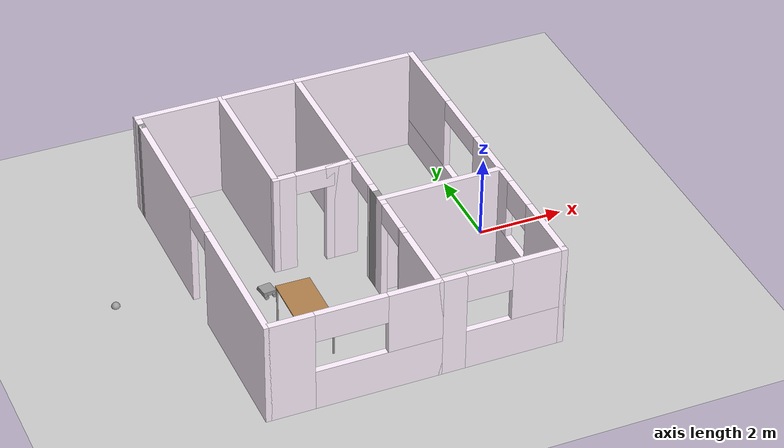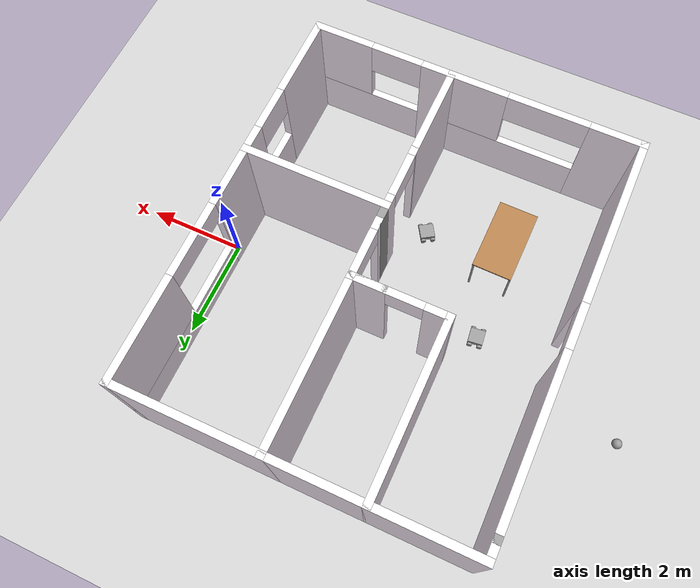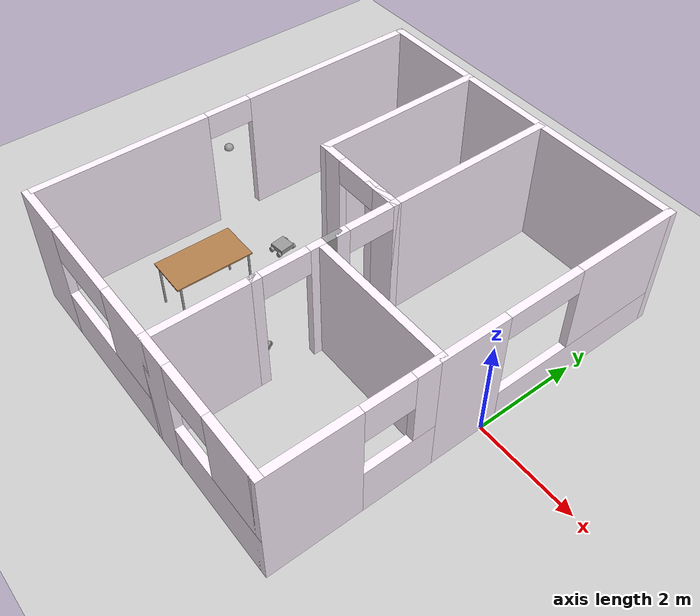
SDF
<sdf version="1.6">
 <world name="default">
  <plugin name="welcome_message" filename="libwelcome_message.so"/>
  <light name="sun" type="directional">
   <pose>0 0 10 0 -0 0</pose>
   <diffuse>0.8 0.8 0.8 1</diffuse>
   <specular>0.2 0.2 0.2 1</specular>
   <attenuation>
    <range>1000</range>
    <constant>0.9</constant>
    <linear>0.01</linear>
    <quadratic>0.001</quadratic>
   </attenuation>
   <direction>-0.5 0.1 -0.9</direction>
  </light>
  <model name="ground_plane">
   <static>1</static>
   <link name="link">
    <collision name="collision">
     <geometry><plane><normal>0 0 1</normal><size>100 100</size></plane></geometry>
     <surface>
      <contact><collide_bitmask>65535</collide_bitmask></contact>
      <friction><ode><mu>100</mu><mu2>50</mu2></ode></friction>
     </surface>
    </collision>
    <visual name="visual">
     <cast_shadows>0</cast_shadows>
     <geometry><plane><normal>0 0 1</normal><size>100 100</size></plane></geometry>
     <material>
      <script><uri>file://media/materials/scripts/gazebo.material</uri><name>Gazebo/Grey</name></script>
     </material>
    </visual>
   </link>
  </model>
  <gravity>0 0 -9.8</gravity>
  <magnetic_field>6e-06 2.3e-05 -4.2e-05</magnetic_field>
  <atmosphere type="adiabatic"/>
  <physics name="default_physics" default="0" type="ode">
   <max_step_size>0.001</max_step_size>
   <real_time_factor>1</real_time_factor>
   <real_time_update_rate>1000</real_time_update_rate>
  </physics>
  <scene><ambient>0.4 0.4 0.4 1</ambient><background>0.7 0.7 0.7 1</background><shadows>1</shadows></scene>
  <spherical_coordinates>
   <surface_model>EARTH_WGS84</surface_model>
   <latitude_deg>0</latitude_deg>
   <longitude_deg>0</longitude_deg>
   <elevation>0</elevation>
   <heading_deg>0</heading_deg>
  </spherical_coordinates>
  <model name="myhouse">
   <model name="myhouse">
    <pose>0.826287 0.920435 0 0 -0 0</pose>
    <link name="Wall_0">
     <pose>-1.425 -3.975 0 0 -0 0</pose>
     <visual name="Wall_0_Visual_0">
      <pose>-1.43816 0 1.25 0 -0 0</pose>
      <geometry><box><size>1.12369 0.15 2.5</size></box></geometry>
      <material>
       <script><uri>file://media/materials/scripts/gazebo.material</uri><name>Gazebo/Grey</name></script>
       <ambient>1 0.94902 1 1</ambient>
      </material>
      <meta><layer>0</layer></meta>
     </visual>
     <collision name="Wall_0_Collision_0">
      <geometry><box><size>1.12369 0.15 2.5</size></box></geometry>
      <pose>-1.43816 0 1.25 0 -0 0</pose>
     </collision>
     <visual name="Wall_0_Visual_1">
      <pose>0.561844 0 0.5 0 -0 0</pose>
      <geometry><box><size>2.87631 0.15 1</size></box></geometry>
      <material>
       <script><uri>file://media/materials/scripts/gazebo.material</uri><name>Gazebo/Grey</name></script>
       <ambient>1 0.94902 1 1</ambient>
      </material>
      <meta><layer>0</layer></meta>
     </visual>
     <collision name="Wall_0_Collision_1">
      <geometry><box><size>2.87631 0.15 1</size></box></geometry>
      <pose>0.561844 0 0.5 0 -0 0</pose>
     </collision>
     <visual name="Wall_0_Visual_2">
      <pose>1.37834 0 1.75 0 -0 0</pose>
      <geometry><box><size>1.24331 0.15 1.5</size></box></geometry>
      <material>
       <script><uri>file://media/materials/scripts/gazebo.material</uri><name>Gazebo/Grey</name></script>
       <ambient>1 0.94902 1 1</ambient>
      </material>
      <meta><layer>0</layer></meta>
     </visual>
     <collision name="Wall_0_Collision_2">
      <geometry><box><size>1.24331 0.15 1.5</size></box></geometry>
      <pose>1.37834 0 1.75 0 -0 0</pose>
     </collision>
     <visual name="Wall_0_Visual_3">
      <pose>-0.059812 0 2.15 0 -0 0</pose>
      <geometry><box><size>1.633 0.15 0.7</size></box></geometry>
      <material>
       <script><uri>file://media/materials/scripts/gazebo.material</uri><name>Gazebo/Grey</name></script>
       <ambient>1 0.94902 1 1</ambient>
      </material>
      <meta><layer>0</layer></meta>
     </visual>
     <collision name="Wall_0_Collision_3">
      <geometry><box><size>1.633 0.15 0.7</size></box></geometry>
      <pose>-0.059812 0 2.15 0 -0 0</pose>
     </collision>
    </link>
    <link name="Wall_1">
     <collision name="Wall_1_Collision">
      <geometry><box><size>2 0.15 2.5</size></box></geometry>
      <pose>0 0 1.25 0 -0 0</pose>
     </collision>
     <visual name="Wall_1_Visual">
      <pose>0 0 1.25 0 -0 0</pose>
      <geometry><box><size>2 0.15 2.5</size></box></geometry>
      <material>
       <script><uri>file://media/materials/scripts/gazebo.material</uri><name>Gazebo/Grey</name></script>
       <ambient>1 0.94902 1 1</ambient>
      </material>
      <meta><layer>0</layer></meta>
     </visual>
     <pose>0.5 -3.05 0 0 -0 1.5708</pose>
    </link>
    <link name="Wall_11">
     <pose>3.35 1.55 0 0 -0 1.5708</pose>
     <visual name="Wall_11_Visual_0">
      <pose>-1.83021 0 1.25 0 -0 0</pose>
      <geometry><box><size>1.33957 0.15 2.5</size></box></geometry>
      <material>
       <script><uri>file://media/materials/scripts/gazebo.material</uri><name>Gazebo/Grey</name></script>
       <ambient>1 0.94902 1 1</ambient>
      </material>
      <meta><layer>0</layer></meta>
     </visual>
     <collision name="Wall_11_Collision_0">
      <geometry><box><size>1.33957 0.15 2.5</size></box></geometry>
      <pose>-1.83021 0 1.25 0 -0 0</pose>
     </collision>
     <visual name="Wall_11_Visual_1">
      <pose>0.669786 0 0.35 0 -0 0</pose>
      <geometry><box><size>3.66043 0.15 0.7</size></box></geometry>
      <material>
       <script><uri>file://media/materials/scripts/gazebo.material</uri><name>Gazebo/Grey</name></script>
       <ambient>1 0.94902 1 1</ambient>
      </material>
      <meta><layer>0</layer></meta>
     </visual>
     <collision name="Wall_11_Collision_1">
      <geometry><box><size>3.66043 0.15 0.7</size></box></geometry>
      <pose>0.669786 0 0.35 0 -0 0</pose>
     </collision>
     <visual name="Wall_11_Visual_2">
      <pose>1.4297 0 1.6 0 -0 0</pose>
      <geometry><box><size>2.1406 0.15 1.8</size></box></geometry>
      <material>
       <script><uri>file://media/materials/scripts/gazebo.material</uri><name>Gazebo/Grey</name></script>
       <ambient>1 0.94902 1 1</ambient>
      </material>
      <meta><layer>0</layer></meta>
     </visual>
     <collision name="Wall_11_Collision_2">
      <geometry><box><size>2.1406 0.15 1.8</size></box></geometry>
      <pose>1.4297 0 1.6 0 -0 0</pose>
     </collision>
     <visual name="Wall_11_Visual_3">
      <pose>-0.400516 0 2.25 0 -0 0</pose>
      <geometry><box><size>1.51982 0.15 0.5</size></box></geometry>
      <material>
       <script><uri>file://media/materials/scripts/gazebo.material</uri><name>Gazebo/Grey</name></script>
       <ambient>1 0.94902 1 1</ambient>
      </material>
      <meta><layer>0</layer></meta>
     </visual>
     <collision name="Wall_11_Collision_3">
      <geometry><box><size>1.51982 0.15 0.5</size></box></geometry>
      <pose>-0.400516 0 2.25 0 -0 0</pose>
     </collision>
    </link>
    <link name="Wall_12">
     <collision name="Wall_12_Collision">
      <geometry><box><size>3 0.15 2.5</size></box></geometry>
      <pose>0 0 1.25 0 -0 0</pose>
     </collision>
     <visual name="Wall_12_Visual">
      <pose>0 0 1.25 0 -0 0</pose>
      <geometry><box><size>3 0.15 2.5</size></box></geometry>
      <material>
       <script><uri>file://media/materials/scripts/gazebo.material</uri><name>Gazebo/Grey</name></script>
       <ambient>1 0.94902 1 1</ambient>
      </material>
      <meta><layer>0</layer></meta>
     </visual>
     <pose>1.925 3.975 0 0 -0 3.14159</pose>
    </link>
    <link name="Wall_13">
     <collision name="Wall_13_Collision">
      <geometry><box><size>3.5 0.15 2.5</size></box></geometry>
      <pose>0 0 1.25 0 -0 0</pose>
     </collision>
     <visual name="Wall_13_Visual">
      <pose>0 0 1.25 0 -0 0</pose>
      <geometry><box><size>3.5 0.15 2.5</size></box></geometry>
      <material>
       <script><uri>file://media/materials/scripts/gazebo.material</uri><name>Gazebo/Grey</name></script>
       <ambient>1 0.94902 1 1</ambient>
      </material>
      <meta><layer>0</layer></meta>
     </visual>
     <pose>0.5 2.3 0 0 0 -1.5708</pose>
    </link>
    <link name="Wall_16">
     <collision name="Wall_16_Collision">
      <geometry><box><size>0.75 0.15 2.5</size></box></geometry>
      <pose>0 0 1.25 0 -0 0</pose>
     </collision>
     <visual name="Wall_16_Visual">
      <pose>0 0 1.25 0 -0 0</pose>
      <geometry><box><size>0.75 0.15 2.5</size></box></geometry>
      <material>
       <script><uri>file://media/materials/scripts/gazebo.material</uri><name>Gazebo/Grey</name></script>
       <ambient>1 0.94902 1 1</ambient>
      </material>
      <meta><layer>0</layer></meta>
     </visual>
     <pose>0.2 0.625 0 0 -0 3.14159</pose>
    </link>
    <link name="Wall_18">
     <pose>0.5 0.05 0 0 -0 1.5708</pose>
     <visual name="Wall_18_Visual_0">
      <pose>-0.521725 0 1.25 0 -0 0</pose>
      <geometry><box><size>0.256551 0.15 2.5</size></box></geometry>
      <material>
       <script><uri>file://media/materials/scripts/gazebo.material</uri><name>Gazebo/Grey</name></script>
       <ambient>1 0.94902 1 1</ambient>
      </material>
      <meta><layer>0</layer></meta>
     </visual>
     <collision name="Wall_18_Collision_0">
      <geometry><box><size>0.256551 0.15 2.5</size></box></geometry>
      <pose>-0.521725 0 1.25 0 -0 0</pose>
     </collision>
     <visual name="Wall_18_Visual_1">
      <pose>0.578275 0 1.25 0 -0 0</pose>
      <geometry><box><size>0.143449 0.15 2.5</size></box></geometry>
      <material>
       <script><uri>file://media/materials/scripts/gazebo.material</uri><name>Gazebo/Grey</name></script>
       <ambient>1 0.94902 1 1</ambient>
      </material>
      <meta><layer>0</layer></meta>
     </visual>
     <collision name="Wall_18_Collision_1">
      <geometry><box><size>0.143449 0.15 2.5</size></box></geometry>
      <pose>0.578275 0 1.25 0 -0 0</pose>
     </collision>
     <visual name="Wall_18_Visual_2">
      <pose>0.056551 0 2.25 0 -0 0</pose>
      <geometry><box><size>0.9 0.15 0.5</size></box></geometry>
      <material>
       <script><uri>file://media/materials/scripts/gazebo.material</uri><name>Gazebo/Grey</name></script>
       <ambient>1 0.94902 1 1</ambient>
      </material>
      <meta><layer>0</layer></meta>
     </visual>
     <collision name="Wall_18_Collision_2">
      <geometry><box><size>0.9 0.15 0.5</size></box></geometry>
      <pose>0.056551 0 2.25 0 -0 0</pose>
     </collision>
    </link>
    <link name="Wall_20">
     <pose>0.5 -1.5 0 0 -0 1.5708</pose>
     <visual name="Wall_20_Visual_0">
      <pose>-0.603119 0 1.25 0 -0 0</pose>
      <geometry><box><size>0.193762 0.15 2.5</size></box></geometry>
      <material>
       <script><uri>file://media/materials/scripts/gazebo.material</uri><name>Gazebo/Grey</name></script>
       <ambient>1 0.94902 1 1</ambient>
      </material>
      <meta><layer>0</layer></meta>
     </visual>
     <collision name="Wall_20_Collision_0">
      <geometry><box><size>0.193762 0.15 2.5</size></box></geometry>
      <pose>-0.603119 0 1.25 0 -0 0</pose>
     </collision>
     <visual name="Wall_20_Visual_1">
      <pose>0.546881 0 1.25 0 -0 0</pose>
      <geometry><box><size>0.306238 0.15 2.5</size></box></geometry>
      <material>
       <script><uri>file://media/materials/scripts/gazebo.material</uri><name>Gazebo/Grey</name></script>
       <ambient>1 0.94902 1 1</ambient>
      </material>
      <meta><layer>0</layer></meta>
     </visual>
     <collision name="Wall_20_Collision_1">
      <geometry><box><size>0.306238 0.15 2.5</size></box></geometry>
      <pose>0.546881 0 1.25 0 -0 0</pose>
     </collision>
     <visual name="Wall_20_Visual_2">
      <pose>-0.056238 0 2.25 0 -0 0</pose>
      <geometry><box><size>0.9 0.15 0.5</size></box></geometry>
      <material>
       <script><uri>file://media/materials/scripts/gazebo.material</uri><name>Gazebo/Grey</name></script>
       <ambient>1 0.94902 1 1</ambient>
      </material>
      <meta><layer>0</layer></meta>
     </visual>
     <collision name="Wall_20_Collision_2">
      <geometry><box><size>0.9 0.15 0.5</size></box></geometry>
      <pose>-0.056238 0 2.25 0 -0 0</pose>
     </collision>
    </link>
    <link name="Wall_22">
     <pose>-0.425 0.625 0 0 -0 3.14159</pose>
     <visual name="Wall_22_Visual_0">
      <pose>-0.720839 0 1.25 0 -0 0</pose>
      <geometry><box><size>0.558322 0.15 2.5</size></box></geometry>
      <material>
       <script><uri>file://media/materials/scripts/gazebo.material</uri><name>Gazebo/Grey</name></script>
       <ambient>1 0.94902 1 1</ambient>
      </material>
      <meta><layer>0</layer></meta>
     </visual>
     <collision name="Wall_22_Collision_0">
      <geometry><box><size>0.558322 0.15 2.5</size></box></geometry>
      <pose>-0.720839 0 1.25 0 -0 0</pose>
     </collision>
     <visual name="Wall_22_Visual_1">
      <pose>0.729161 0 1.25 0 -0 0</pose>
      <geometry><box><size>0.541678 0.15 2.5</size></box></geometry>
      <material>
       <script><uri>file://media/materials/scripts/gazebo.material</uri><name>Gazebo/Grey</name></script>
       <ambient>1 0.94902 1 1</ambient>
      </material>
      <meta><layer>0</layer></meta>
     </visual>
     <collision name="Wall_22_Collision_1">
      <geometry><box><size>0.541678 0.15 2.5</size></box></geometry>
      <pose>0.729161 0 1.25 0 -0 0</pose>
     </collision>
     <visual name="Wall_22_Visual_2">
      <pose>0.008322 0 2.25 0 -0 0</pose>
      <geometry><box><size>0.9 0.15 0.5</size></box></geometry>
      <material>
       <script><uri>file://media/materials/scripts/gazebo.material</uri><name>Gazebo/Grey</name></script>
       <ambient>1 0.94902 1 1</ambient>
      </material>
      <meta><layer>0</layer></meta>
     </visual>
     <collision name="Wall_22_Collision_2">
      <geometry><box><size>0.9 0.15 0.5</size></box></geometry>
      <pose>0.008322 0 2.25 0 -0 0</pose>
     </collision>
    </link>
    <link name="Wall_23">
     <collision name="Wall_23_Collision">
      <geometry><box><size>3.5 0.15 2.5</size></box></geometry>
      <pose>0 0 1.25 0 -0 0</pose>
     </collision>
     <visual name="Wall_23_Visual">
      <pose>0 0 1.25 0 -0 0</pose>
      <geometry><box><size>3.5 0.15 2.5</size></box></geometry>
      <material>
       <script><uri>file://media/materials/scripts/gazebo.material</uri><name>Gazebo/Grey</name></script>
       <ambient>1 0.94902 1 1</ambient>
      </material>
      <meta><layer>0</layer></meta>
     </visual>
     <pose>-1.35 2.3 0 0 -0 1.5708</pose>
    </link>
    <link name="Wall_27">
     <collision name="Wall_27_Collision">
      <geometry><box><size>0.15 0.15 2.5</size></box></geometry>
      <pose>0 0 1.25 0 -0 0</pose>
     </collision>
     <visual name="Wall_27_Visual">
      <pose>0 0 1.25 0 -0 0</pose>
      <geometry><box><size>0.15 0.15 2.5</size></box></geometry>
      <material>
       <script><uri>file://media/materials/scripts/gazebo.material</uri><name>Gazebo/Grey</name></script>
       <ambient>1 1 1 1</ambient>
      </material>
      <meta><layer>0</layer></meta>
     </visual>
     <pose>-3.35 3.625 0 0 -0 0</pose>
    </link>
    <link name="Wall_3">
     <pose>1.925 -3.975 0 0 -0 0</pose>
     <visual name="Wall_3_Visual_0">
      <pose>-1.15403 0 1.25 0 -0 0</pose>
      <geometry><box><size>0.691931 0.15 2.5</size></box></geometry>
      <material>
       <script><uri>file://media/materials/scripts/gazebo.material</uri><name>Gazebo/Grey</name></script>
       <ambient>1 0.94902 1 1</ambient>
      </material>
      <meta><layer>0</layer></meta>
     </visual>
     <collision name="Wall_3_Collision_0">
      <geometry><box><size>0.691931 0.15 2.5</size></box></geometry>
      <pose>-1.15403 0 1.25 0 -0 0</pose>
     </collision>
     <visual name="Wall_3_Visual_1">
      <pose>0.345966 0 0.5 0 -0 0</pose>
      <geometry><box><size>2.30807 0.15 1</size></box></geometry>
      <material>
       <script><uri>file://media/materials/scripts/gazebo.material</uri><name>Gazebo/Grey</name></script>
       <ambient>1 0.94902 1 1</ambient>
      </material>
      <meta><layer>0</layer></meta>
     </visual>
     <collision name="Wall_3_Collision_1">
      <geometry><box><size>2.30807 0.15 1</size></box></geometry>
      <pose>0.345966 0 0.5 0 -0 0</pose>
     </collision>
     <visual name="Wall_3_Visual_2">
      <pose>0.869966 0 1.75 0 -0 0</pose>
      <geometry><box><size>1.26007 0.15 1.5</size></box></geometry>
      <material>
       <script><uri>file://media/materials/scripts/gazebo.material</uri><name>Gazebo/Grey</name></script>
       <ambient>1 0.94902 1 1</ambient>
      </material>
      <meta><layer>0</layer></meta>
     </visual>
     <collision name="Wall_3_Collision_2">
      <geometry><box><size>1.26007 0.15 1.5</size></box></geometry>
      <pose>0.869966 0 1.75 0 -0 0</pose>
     </collision>
     <visual name="Wall_3_Visual_3">
      <pose>-0.284069 0 2.15 0 -0 0</pose>
      <geometry><box><size>1.048 0.15 0.7</size></box></geometry>
      <material>
       <script><uri>file://media/materials/scripts/gazebo.material</uri><name>Gazebo/Grey</name></script>
       <ambient>1 0.94902 1 1</ambient>
      </material>
      <meta><layer>0</layer></meta>
     </visual>
     <collision name="Wall_3_Collision_3">
      <geometry><box><size>1.048 0.15 0.7</size></box></geometry>
      <pose>-0.284069 0 2.15 0 -0 0</pose>
     </collision>
    </link>
    <link name="Wall_4">
     <pose>3.35 -2.425 0 0 -0 1.5708</pose>
     <visual name="Wall_4_Visual_0">
      <pose>-0.752455 0 1.25 0 -0 0</pose>
      <geometry><box><size>1.74509 0.15 2.5</size></box></geometry>
      <material>
       <script><uri>file://media/materials/scripts/gazebo.material</uri><name>Gazebo/Grey</name></script>
       <ambient>1 0.94902 1 1</ambient>
      </material>
      <meta><layer>0</layer></meta>
     </visual>
     <collision name="Wall_4_Collision_0">
      <geometry><box><size>1.74509 0.15 2.5</size></box></geometry>
      <pose>-0.752455 0 1.25 0 -0 0</pose>
     </collision>
     <visual name="Wall_4_Visual_1">
      <pose>0.872545 0 0.5 0 -0 0</pose>
      <geometry><box><size>1.50491 0.15 1</size></box></geometry>
      <material>
       <script><uri>file://media/materials/scripts/gazebo.material</uri><name>Gazebo/Grey</name></script>
       <ambient>1 0.94902 1 1</ambient>
      </material>
      <meta><layer>0</layer></meta>
     </visual>
     <collision name="Wall_4_Collision_1">
      <geometry><box><size>1.50491 0.15 1</size></box></geometry>
      <pose>0.872545 0 0.5 0 -0 0</pose>
     </collision>
     <visual name="Wall_4_Visual_2">
      <pose>1.33091 0 1.75 0 -0 0</pose>
      <geometry><box><size>0.588181 0.15 1.5</size></box></geometry>
      <material>
       <script><uri>file://media/materials/scripts/gazebo.material</uri><name>Gazebo/Grey</name></script>
       <ambient>1 0.94902 1 1</ambient>
      </material>
      <meta><layer>0</layer></meta>
     </visual>
     <collision name="Wall_4_Collision_2">
      <geometry><box><size>0.588181 0.15 1.5</size></box></geometry>
      <pose>1.33091 0 1.75 0 -0 0</pose>
     </collision>
     <visual name="Wall_4_Visual_3">
      <pose>0.578454 0 2.15 0 -0 0</pose>
      <geometry><box><size>0.916728 0.15 0.7</size></box></geometry>
      <material>
       <script><uri>file://media/materials/scripts/gazebo.material</uri><name>Gazebo/Grey</name></script>
       <ambient>1 0.94902 1 1</ambient>
      </material>
      <meta><layer>0</layer></meta>
     </visual>
     <collision name="Wall_4_Collision_3">
      <geometry><box><size>0.916728 0.15 0.7</size></box></geometry>
      <pose>0.578454 0 2.15 0 -0 0</pose>
     </collision>
    </link>
    <link name="Wall_5">
     <collision name="Wall_5_Collision">
      <geometry><box><size>3 0.15 2.5</size></box></geometry>
      <pose>0 0 1.25 0 -0 0</pose>
     </collision>
     <visual name="Wall_5_Visual">
      <pose>0 0 1.25 0 -0 0</pose>
      <geometry><box><size>3 0.15 2.5</size></box></geometry>
      <material>
       <script><uri>file://media/materials/scripts/gazebo.material</uri><name>Gazebo/Grey</name></script>
       <ambient>1 0.94902 1 1</ambient>
      </material>
      <meta><layer>0</layer></meta>
     </visual>
     <pose>1.925 -0.875 0 0 -0 3.14159</pose>
    </link>
    <link name="Wall_57">
     <collision name="Wall_57_Collision">
      <geometry><box><size>4 0.15 2.5</size></box></geometry>
      <pose>0 0 1.25 0 -0 0</pose>
     </collision>
     <visual name="Wall_57_Visual">
      <pose>0 0 1.25 0 -0 0</pose>
      <geometry><box><size>4 0.15 2.5</size></box></geometry>
      <material>
       <script><uri>file://media/materials/scripts/gazebo.material</uri><name>Gazebo/Grey</name></script>
       <ambient>1 0.94902 1 1</ambient>
      </material>
      <meta><layer>0</layer></meta>
     </visual>
     <pose>-1.425 3.975 0 0 -0 3.14159</pose>
    </link>
    <link name="Wall_58">
     <pose>-3.35 0 0 0 0 -1.5708</pose>
     <visual name="Wall_58_Visual_0">
      <pose>-2.19356 0 1.25 0 -0 0</pose>
      <geometry><box><size>3.71288 0.15 2.5</size></box></geometry>
      <material>
       <script><uri>file://media/materials/scripts/gazebo.material</uri><name>Gazebo/Grey</name></script>
       <ambient>1 0.94902 1 1</ambient>
      </material>
      <meta><layer>0</layer></meta>
     </visual>
     <collision name="Wall_58_Collision_0">
      <geometry><box><size>3.71288 0.15 2.5</size></box></geometry>
      <pose>-2.19356 0 1.25 0 -0 0</pose>
     </collision>
     <visual name="Wall_58_Visual_1">
      <pose>2.30644 0 1.25 0 -0 0</pose>
      <geometry><box><size>3.48712 0.15 2.5</size></box></geometry>
      <material>
       <script><uri>file://media/materials/scripts/gazebo.material</uri><name>Gazebo/Grey</name></script>
       <ambient>1 0.94902 1 1</ambient>
      </material>
      <meta><layer>0</layer></meta>
     </visual>
     <collision name="Wall_58_Collision_1">
      <geometry><box><size>3.48712 0.15 2.5</size></box></geometry>
      <pose>2.30644 0 1.25 0 -0 0</pose>
     </collision>
     <visual name="Wall_58_Visual_2">
      <pose>0.112881 0 2.25 0 -0 0</pose>
      <geometry><box><size>0.9 0.15 0.5</size></box></geometry>
      <material>
       <script><uri>file://media/materials/scripts/gazebo.material</uri><name>Gazebo/Grey</name></script>
       <ambient>1 0.94902 1 1</ambient>
      </material>
      <meta><layer>0</layer></meta>
     </visual>
     <collision name="Wall_58_Collision_2">
      <geometry><box><size>0.9 0.15 0.5</size></box></geometry>
      <pose>0.112881 0 2.25 0 -0 0</pose>
     </collision>
    </link>
    <link name="Wall_9">
     <collision name="Wall_9_Collision">
      <geometry><box><size>0.5 0.15 2.5</size></box></geometry>
      <pose>0 0 1.25 0 -0 0</pose>
     </collision>
     <visual name="Wall_9_Visual">
      <pose>0 0 1.25 0 -0 0</pose>
      <geometry><box><size>0.5 0.15 2.5</size></box></geometry>
      <material>
       <script><uri>file://media/materials/scripts/gazebo.material</uri><name>Gazebo/Grey</name></script>
       <ambient>1 1 1 1</ambient>
      </material>
      <meta><layer>0</layer></meta>
     </visual>
     <pose>0.5 -0.7 0 0 -0 1.5708</pose>
    </link>
    <static>1</static>
   </model>
   <model name="table">
    <static>1</static>
    <link name="link">
     <collision name="surface">
      <pose>0 0 1 0 -0 0</pose>
      <geometry><box><size>1.5 0.8 0.03</size></box></geometry>
      <surface><friction><ode><mu>0.6</mu><mu2>0.6</mu2></ode></friction></surface>
     </collision>
     <visual name="visual1">
      <pose>0 0 1 0 -0 0</pose>
      <geometry><box><size>1.5 0.8 0.03</size></box></geometry>
      <material>
       <script><uri>file://media/materials/scripts/gazebo.material</uri><name>Gazebo/Wood</name></script>
      </material>
     </visual>
     <collision name="front_left_leg">
      <pose>0.68 0.38 0.5 0 -0 0</pose>
      <geometry><cylinder><radius>0.02</radius><length>1</length></cylinder></geometry>
     </collision>
     <visual name="front_left_leg">
      <pose>0.68 0.38 0.5 0 -0 0</pose>
      <geometry><cylinder><radius>0.02</radius><length>1</length></cylinder></geometry>
      <material>
       <script><uri>file://media/materials/scripts/gazebo.material</uri><name>Gazebo/Grey</name></script>
      </material>
     </visual>
     <collision name="front_right_leg">
      <pose>0.68 -0.38 0.5 0 -0 0</pose>
      <geometry><cylinder><radius>0.02</radius><length>1</length></cylinder></geometry>
     </collision>
     <visual name="front_right_leg">
      <pose>0.68 -0.38 0.5 0 -0 0</pose>
      <geometry><cylinder><radius>0.02</radius><length>1</length></cylinder></geometry>
      <material>
       <script><uri>file://media/materials/scripts/gazebo.material</uri><name>Gazebo/Grey</name></script>
      </material>
     </visual>
     <collision name="back_right_leg">
      <pose>-0.68 -0.38 0.5 0 -0 0</pose>
      <geometry><cylinder><radius>0.02</radius><length>1</length></cylinder></geometry>
     </collision>
     <visual name="back_right_leg">
      <pose>-0.68 -0.38 0.5 0 -0 0</pose>
      <geometry><cylinder><radius>0.02</radius><length>1</length></cylinder></geometry>
      <material>
       <script><uri>file://media/materials/scripts/gazebo.material</uri><name>Gazebo/Grey</name></script>
      </material>
     </visual>
     <collision name="back_left_leg">
      <pose>-0.68 0.38 0.5 0 -0 0</pose>
      <geometry><cylinder><radius>0.02</radius><length>1</length></cylinder></geometry>
     </collision>
     <visual name="back_left_leg">
      <pose>-0.68 0.38 0.5 0 -0 0</pose>
      <geometry><cylinder><radius>0.02</radius><length>1</length></cylinder></geometry>
      <material>
       <script><uri>file://media/materials/scripts/gazebo.material</uri><name>Gazebo/Grey</name></script>
      </material>
     </visual>
    </link>
    <pose>-0.826281 -0.920433 0 0 0 -1.58034</pose>
   </model>
   <static>0</static>
   <pose>-4.23834 -1.04093 0 0 -0 0</pose>
  </model>
  <model name="myrobot">
   <link name="link_0">
    <pose>0 -0 0.04 0 -0 0</pose>
    <inertial>
     <mass>1</mass>
     <inertia>
      <ixx>0.166667</ixx>
      <ixy>0</ixy>
      <ixz>0</ixz>
      <iyy>0.166667</iyy>
      <iyz>0</iyz>
      <izz>0.166667</izz>
     </inertia>
    </inertial>
    <visual name="visual">
     <geometry><box><size>0.3 0.3 0.1</size></box></geometry>
     <material>
      <lighting>1</lighting>
      <script><uri>file://media/materials/scripts/gazebo.material</uri><name>Gazebo/Grey</name></script>
      <shader type="pixel"><normal_map>__default__</normal_map></shader>
      <ambient>0.3 0.3 0.3 1</ambient>
      <diffuse>0.7 0.7 0.7 1</diffuse>
      <specular>0.01 0.01 0.01 1</specular>
      <emissive>0 0 0 1</emissive>
     </material>
    </visual>
    <collision name="collision">
     <geometry><box><size>0.3 0.3 0.1</size></box></geometry>
     <surface>
      <friction>
       <ode><mu>1</mu><mu2>1</mu2><fdir1>0 0 0</fdir1><slip1>0</slip1><slip2>0</slip2></ode>
       <torsional>
        <coefficient>1</coefficient>
        <patch_radius>0</patch_radius>
        <surface_radius>0</surface_radius>
        <use_patch_radius>1</use_patch_radius>
        <ode><slip>0</slip></ode>
       </torsional>
      </friction>
      <bounce><restitution_coefficient>0</restitution_coefficient><threshold>1e+06</threshold></bounce>
      <contact>
       <collide_without_contact>0</collide_without_contact>
       <collide_without_contact_bitmask>1</collide_without_contact_bitmask>
       <collide_bitmask>1</collide_bitmask>
       <ode>
        <soft_cfm>0</soft_cfm>
        <soft_erp>0.2</soft_erp>
        <kp>1e+13</kp>
        <kd>1</kd>
        <max_vel>0.01</max_vel>
        <min_depth>0</min_depth>
       </ode>
       <bullet>
        <split_impulse>1</split_impulse>
        <split_impulse_penetration_threshold>-0.01</split_impulse_penetration_threshold>
        <soft_cfm>0</soft_cfm>
        <soft_erp>0.2</soft_erp>
        <kp>1e+13</kp>
        <kd>1</kd>
       </bullet>
      </contact>
     </surface>
    </collision>
   </link>
   <link name="link_1_clone">
    <pose>-0.1 0.17504 -0.01 1.57 -0 0</pose>
    <inertial>
     <mass>1</mass>
     <inertia><ixx>0.145833</ixx><ixy>0</ixy><ixz>0</ixz><iyy>0.145833</iyy><iyz>0</iyz><izz>0.125</izz></inertia>
    </inertial>
    <visual name="visual">
     <geometry><cylinder><radius>0.05</radius><length>0.05</length></cylinder></geometry>
     <material>
      <lighting>1</lighting>
      <script><uri>file://media/materials/scripts/gazebo.material</uri><name>Gazebo/Grey</name></script>
      <shader type="pixel"><normal_map>__default__</normal_map></shader>
      <ambient>0.3 0.3 0.3 1</ambient>
      <diffuse>0.7 0.7 0.7 1</diffuse>
      <specular>0.01 0.01 0.01 1</specular>
      <emissive>0 0 0 1</emissive>
     </material>
    </visual>
    <collision name="collision">
     <geometry><cylinder><radius>0.05</radius><length>0.05</length></cylinder></geometry>
     <surface>
      <friction>
       <ode><mu>1</mu><mu2>1</mu2><fdir1>0 0 0</fdir1><slip1>0</slip1><slip2>0</slip2></ode>
       <torsional>
        <coefficient>1</coefficient>
        <patch_radius>0</patch_radius>
        <surface_radius>0</surface_radius>
        <use_patch_radius>1</use_patch_radius>
        <ode><slip>0</slip></ode>
       </torsional>
      </friction>
      <bounce><restitution_coefficient>0</restitution_coefficient><threshold>1e+06</threshold></bounce>
      <contact>
       <collide_without_contact>0</collide_without_contact>
       <collide_without_contact_bitmask>1</collide_without_contact_bitmask>
       <collide_bitmask>1</collide_bitmask>
       <ode>
        <soft_cfm>0</soft_cfm>
        <soft_erp>0.2</soft_erp>
        <kp>1e+13</kp>
        <kd>1</kd>
        <max_vel>0.01</max_vel>
        <min_depth>0</min_depth>
       </ode>
       <bullet>
        <split_impulse>1</split_impulse>
        <split_impulse_penetration_threshold>-0.01</split_impulse_penetration_threshold>
        <soft_cfm>0</soft_cfm>
        <soft_erp>0.2</soft_erp>
        <kp>1e+13</kp>
        <kd>1</kd>
       </bullet>
      </contact>
     </surface>
    </collision>
   </link>
   <link name="link_1_clone_0">
    <pose>0.1 0.17504 -0.01 1.57 -0 0</pose>
    <inertial>
     <mass>1</mass>
     <inertia><ixx>0.145833</ixx><ixy>0</ixy><ixz>0</ixz><iyy>0.145833</iyy><iyz>0</iyz><izz>0.125</izz></inertia>
    </inertial>
    <visual name="visual">
     <geometry><cylinder><radius>0.05</radius><length>0.05</length></cylinder></geometry>
     <material>
      <lighting>1</lighting>
      <script><uri>file://media/materials/scripts/gazebo.material</uri><name>Gazebo/Grey</name></script>
      <shader type="pixel"><normal_map>__default__</normal_map></shader>
      <ambient>0.3 0.3 0.3 1</ambient>
      <diffuse>0.7 0.7 0.7 1</diffuse>
      <specular>0.01 0.01 0.01 1</specular>
      <emissive>0 0 0 1</emissive>
     </material>
    </visual>
    <collision name="collision">
     <geometry><cylinder><radius>0.05</radius><length>0.05</length></cylinder></geometry>
     <surface>
      <friction>
       <ode><mu>1</mu><mu2>1</mu2><fdir1>0 0 0</fdir1><slip1>0</slip1><slip2>0</slip2></ode>
       <torsional>
        <coefficient>1</coefficient>
        <patch_radius>0</patch_radius>
        <surface_radius>0</surface_radius>
        <use_patch_radius>1</use_patch_radius>
        <ode><slip>0</slip></ode>
       </torsional>
      </friction>
      <bounce><restitution_coefficient>0</restitution_coefficient><threshold>1e+06</threshold></bounce>
      <contact>
       <collide_without_contact>0</collide_without_contact>
       <collide_without_contact_bitmask>1</collide_without_contact_bitmask>
       <collide_bitmask>1</collide_bitmask>
       <ode>
        <soft_cfm>0</soft_cfm>
        <soft_erp>0.2</soft_erp>
        <kp>1e+13</kp>
        <kd>1</kd>
        <max_vel>0.01</max_vel>
        <min_depth>0</min_depth>
       </ode>
       <bullet>
        <split_impulse>1</split_impulse>
        <split_impulse_penetration_threshold>-0.01</split_impulse_penetration_threshold>
        <soft_cfm>0</soft_cfm>
        <soft_erp>0.2</soft_erp>
        <kp>1e+13</kp>
        <kd>1</kd>
       </bullet>
      </contact>
     </surface>
    </collision>
   </link>
   <link name="link_1_clone_1">
    <pose>-0.1 -0.17504 -0.01 1.57 -0 0</pose>
    <inertial>
     <mass>1</mass>
     <inertia><ixx>0.145833</ixx><ixy>0</ixy><ixz>0</ixz><iyy>0.145833</iyy><iyz>0</iyz><izz>0.125</izz></inertia>
    </inertial>
    <visual name="visual">
     <geometry><cylinder><radius>0.05</radius><length>0.05</length></cylinder></geometry>
     <material>
      <lighting>1</lighting>
      <script><uri>file://media/materials/scripts/gazebo.material</uri><name>Gazebo/Grey</name></script>
      <shader type="pixel"><normal_map>__default__</normal_map></shader>
      <ambient>0.3 0.3 0.3 1</ambient>
      <diffuse>0.7 0.7 0.7 1</diffuse>
      <specular>0.01 0.01 0.01 1</specular>
      <emissive>0 0 0 1</emissive>
     </material>
    </visual>
    <collision name="collision">
     <geometry><cylinder><radius>0.05</radius><length>0.05</length></cylinder></geometry>
     <surface>
      <friction>
       <ode><mu>1</mu><mu2>1</mu2><fdir1>0 0 0</fdir1><slip1>0</slip1><slip2>0</slip2></ode>
       <torsional>
        <coefficient>1</coefficient>
        <patch_radius>0</patch_radius>
        <surface_radius>0</surface_radius>
        <use_patch_radius>1</use_patch_radius>
        <ode><slip>0</slip></ode>
       </torsional>
      </friction>
      <bounce><restitution_coefficient>0</restitution_coefficient><threshold>1e+06</threshold></bounce>
      <contact>
       <collide_without_contact>0</collide_without_contact>
       <collide_without_contact_bitmask>1</collide_without_contact_bitmask>
       <collide_bitmask>1</collide_bitmask>
       <ode>
        <soft_cfm>0</soft_cfm>
        <soft_erp>0.2</soft_erp>
        <kp>1e+13</kp>
        <kd>1</kd>
        <max_vel>0.01</max_vel>
        <min_depth>0</min_depth>
       </ode>
       <bullet>
        <split_impulse>1</split_impulse>
        <split_impulse_penetration_threshold>-0.01</split_impulse_penetration_threshold>
        <soft_cfm>0</soft_cfm>
        <soft_erp>0.2</soft_erp>
        <kp>1e+13</kp>
        <kd>1</kd>
       </bullet>
      </contact>
     </surface>
    </collision>
   </link>
   <link name="link_1_clone_1_clone">
    <pose>0.1 -0.17504 -0.01 1.57 -0 0</pose>
    <inertial>
     <mass>1</mass>
     <inertia><ixx>0.145833</ixx><ixy>0</ixy><ixz>0</ixz><iyy>0.145833</iyy><iyz>0</iyz><izz>0.125</izz></inertia>
    </inertial>
    <visual name="visual">
     <geometry><cylinder><radius>0.05</radius><length>0.05</length></cylinder></geometry>
     <material>
      <lighting>1</lighting>
      <script><uri>file://media/materials/scripts/gazebo.material</uri><name>Gazebo/Grey</name></script>
      <shader type="pixel"><normal_map>__default__</normal_map></shader>
      <ambient>0.3 0.3 0.3 1</ambient>
      <diffuse>0.7 0.7 0.7 1</diffuse>
      <specular>0.01 0.01 0.01 1</specular>
      <emissive>0 0 0 1</emissive>
     </material>
    </visual>
    <collision name="collision">
     <geometry><cylinder><radius>0.05</radius><length>0.05</length></cylinder></geometry>
     <surface>
      <friction>
       <ode><mu>1</mu><mu2>1</mu2><fdir1>0 0 0</fdir1><slip1>0</slip1><slip2>0</slip2></ode>
       <torsional>
        <coefficient>1</coefficient>
        <patch_radius>0</patch_radius>
        <surface_radius>0</surface_radius>
        <use_patch_radius>1</use_patch_radius>
        <ode><slip>0</slip></ode>
       </torsional>
      </friction>
      <bounce><restitution_coefficient>0</restitution_coefficient><threshold>1e+06</threshold></bounce>
      <contact>
       <collide_without_contact>0</collide_without_contact>
       <collide_without_contact_bitmask>1</collide_without_contact_bitmask>
       <collide_bitmask>1</collide_bitmask>
       <ode>
        <soft_cfm>0</soft_cfm>
        <soft_erp>0.2</soft_erp>
        <kp>1e+13</kp>
        <kd>1</kd>
        <max_vel>0.01</max_vel>
        <min_depth>0</min_depth>
       </ode>
       <bullet>
        <split_impulse>1</split_impulse>
        <split_impulse_penetration_threshold>-0.01</split_impulse_penetration_threshold>
        <soft_cfm>0</soft_cfm>
        <soft_erp>0.2</soft_erp>
        <kp>1e+13</kp>
        <kd>1</kd>
       </bullet>
      </contact>
     </surface>
    </collision>
   </link>
   <joint name="link_0_JOINT_1" type="revolute">
    <parent>link_0</parent>
    <child>link_1_clone_0</child>
    <axis>
     <xyz>0 0 1</xyz>
     <use_parent_model_frame>0</use_parent_model_frame>
     <limit>
      <lower>-1.79769e+308</lower>
      <upper>1.79769e+308</upper>
      <effort>-1</effort>
      <velocity>-1</velocity>
     </limit>
     <dynamics>
      <spring_reference>0</spring_reference>
      <spring_stiffness>0</spring_stiffness>
      <damping>0</damping>
     </dynamics>
    </axis>
    <physics>
     <ode><limit><cfm>0</cfm><erp>0.2</erp></limit><suspension><cfm>0</cfm><erp>0.2</erp></suspension></ode>
    </physics>
   </joint>
   <joint name="link_0_JOINT_2" type="revolute">
    <parent>link_0</parent>
    <child>link_1_clone</child>
    <axis>
     <xyz>0 0 1</xyz>
     <use_parent_model_frame>0</use_parent_model_frame>
     <limit>
      <lower>-1.79769e+308</lower>
      <upper>1.79769e+308</upper>
      <effort>-1</effort>
      <velocity>-1</velocity>
     </limit>
     <dynamics>
      <spring_reference>0</spring_reference>
      <spring_stiffness>0</spring_stiffness>
      <damping>0</damping>
     </dynamics>
    </axis>
    <physics>
     <ode><limit><cfm>0</cfm><erp>0.2</erp></limit><suspension><cfm>0</cfm><erp>0.2</erp></suspension></ode>
    </physics>
   </joint>
   <joint name="link_0_JOINT_3" type="revolute">
    <parent>link_0</parent>
    <child>link_1_clone_1_clone</child>
    <axis>
     <xyz>0 0 1</xyz>
     <use_parent_model_frame>0</use_parent_model_frame>
     <limit>
      <lower>-1.79769e+308</lower>
      <upper>1.79769e+308</upper>
      <effort>-1</effort>
      <velocity>-1</velocity>
     </limit>
     <dynamics>
      <spring_reference>0</spring_reference>
      <spring_stiffness>0</spring_stiffness>
      <damping>0</damping>
     </dynamics>
    </axis>
    <physics>
     <ode><limit><cfm>0</cfm><erp>0.2</erp></limit><suspension><cfm>0</cfm><erp>0.2</erp></suspension></ode>
    </physics>
   </joint>
   <joint name="link_0_JOINT_4" type="revolute">
    <parent>link_0</parent>
    <child>link_1_clone_1</child>
    <axis>
     <xyz>1 0 0</xyz>
     <use_parent_model_frame>0</use_parent_model_frame>
     <limit>
      <lower>-1.79769e+308</lower>
      <upper>1.79769e+308</upper>
      <effort>-1</effort>
      <velocity>-1</velocity>
     </limit>
     <dynamics>
      <spring_reference>0</spring_reference>
      <spring_stiffness>0</spring_stiffness>
      <damping>0</damping>
     </dynamics>
    </axis>
    <physics>
     <ode><limit><cfm>0</cfm><erp>0.2</erp></limit><suspension><cfm>0</cfm><erp>0.2</erp></suspension></ode>
    </physics>
   </joint>
   <static>0</static>
   <pose>-5.26835 -0.19713 0.060018 4.1e-05 -7.7e-05 0.119029</pose>
  </model>
  <model name="myrobot_0">
   <link name="link_0">
    <pose>0 -0 0.04 0 -0 0</pose>
    <inertial>
     <mass>1</mass>
     <inertia>
      <ixx>0.166667</ixx>
      <ixy>0</ixy>
      <ixz>0</ixz>
      <iyy>0.166667</iyy>
      <iyz>0</iyz>
      <izz>0.166667</izz>
     </inertia>
    </inertial>
    <visual name="visual">
     <geometry><box><size>0.3 0.3 0.1</size></box></geometry>
     <material>
      <lighting>1</lighting>
      <script><uri>file://media/materials/scripts/gazebo.material</uri><name>Gazebo/Grey</name></script>
      <shader type="pixel"><normal_map>__default__</normal_map></shader>
      <ambient>0.3 0.3 0.3 1</ambient>
      <diffuse>0.7 0.7 0.7 1</diffuse>
      <specular>0.01 0.01 0.01 1</specular>
      <emissive>0 0 0 1</emissive>
     </material>
    </visual>
    <collision name="collision">
     <geometry><box><size>0.3 0.3 0.1</size></box></geometry>
     <surface>
      <friction>
       <ode><mu>1</mu><mu2>1</mu2><fdir1>0 0 0</fdir1><slip1>0</slip1><slip2>0</slip2></ode>
       <torsional>
        <coefficient>1</coefficient>
        <patch_radius>0</patch_radius>
        <surface_radius>0</surface_radius>
        <use_patch_radius>1</use_patch_radius>
        <ode><slip>0</slip></ode>
       </torsional>
      </friction>
      <bounce><restitution_coefficient>0</restitution_coefficient><threshold>1e+06</threshold></bounce>
      <contact>
       <collide_without_contact>0</collide_without_contact>
       <collide_without_contact_bitmask>1</collide_without_contact_bitmask>
       <collide_bitmask>1</collide_bitmask>
       <ode>
        <soft_cfm>0</soft_cfm>
        <soft_erp>0.2</soft_erp>
        <kp>1e+13</kp>
        <kd>1</kd>
        <max_vel>0.01</max_vel>
        <min_depth>0</min_depth>
       </ode>
       <bullet>
        <split_impulse>1</split_impulse>
        <split_impulse_penetration_threshold>-0.01</split_impulse_penetration_threshold>
        <soft_cfm>0</soft_cfm>
        <soft_erp>0.2</soft_erp>
        <kp>1e+13</kp>
        <kd>1</kd>
       </bullet>
      </contact>
     </surface>
    </collision>
   </link>
   <link name="link_1_clone">
    <pose>-0.1 0.17504 -0.01 1.57 -0 0</pose>
    <inertial>
     <mass>1</mass>
     <inertia><ixx>0.145833</ixx><ixy>0</ixy><ixz>0</ixz><iyy>0.145833</iyy><iyz>0</iyz><izz>0.125</izz></inertia>
    </inertial>
    <visual name="visual">
     <geometry><cylinder><radius>0.05</radius><length>0.05</length></cylinder></geometry>
     <material>
      <lighting>1</lighting>
      <script><uri>file://media/materials/scripts/gazebo.material</uri><name>Gazebo/Grey</name></script>
      <shader type="pixel"><normal_map>__default__</normal_map></shader>
      <ambient>0.3 0.3 0.3 1</ambient>
      <diffuse>0.7 0.7 0.7 1</diffuse>
      <specular>0.01 0.01 0.01 1</specular>
      <emissive>0 0 0 1</emissive>
     </material>
    </visual>
    <collision name="collision">
     <geometry><cylinder><radius>0.05</radius><length>0.05</length></cylinder></geometry>
     <surface>
      <friction>
       <ode><mu>1</mu><mu2>1</mu2><fdir1>0 0 0</fdir1><slip1>0</slip1><slip2>0</slip2></ode>
       <torsional>
        <coefficient>1</coefficient>
        <patch_radius>0</patch_radius>
        <surface_radius>0</surface_radius>
        <use_patch_radius>1</use_patch_radius>
        <ode><slip>0</slip></ode>
       </torsional>
      </friction>
      <bounce><restitution_coefficient>0</restitution_coefficient><threshold>1e+06</threshold></bounce>
      <contact>
       <collide_without_contact>0</collide_without_contact>
       <collide_without_contact_bitmask>1</collide_without_contact_bitmask>
       <collide_bitmask>1</collide_bitmask>
       <ode>
        <soft_cfm>0</soft_cfm>
        <soft_erp>0.2</soft_erp>
        <kp>1e+13</kp>
        <kd>1</kd>
        <max_vel>0.01</max_vel>
        <min_depth>0</min_depth>
       </ode>
       <bullet>
        <split_impulse>1</split_impulse>
        <split_impulse_penetration_threshold>-0.01</split_impulse_penetration_threshold>
        <soft_cfm>0</soft_cfm>
        <soft_erp>0.2</soft_erp>
        <kp>1e+13</kp>
        <kd>1</kd>
       </bullet>
      </contact>
     </surface>
    </collision>
   </link>
   <link name="link_1_clone_0">
    <pose>0.1 0.17504 -0.01 1.57 -0 0</pose>
    <inertial>
     <mass>1</mass>
     <inertia><ixx>0.145833</ixx><ixy>0</ixy><ixz>0</ixz><iyy>0.145833</iyy><iyz>0</iyz><izz>0.125</izz></inertia>
    </inertial>
    <visual name="visual">
     <geometry><cylinder><radius>0.05</radius><length>0.05</length></cylinder></geometry>
     <material>
      <lighting>1</lighting>
      <script><uri>file://media/materials/scripts/gazebo.material</uri><name>Gazebo/Grey</name></script>
      <shader type="pixel"><normal_map>__default__</normal_map></shader>
      <ambient>0.3 0.3 0.3 1</ambient>
      <diffuse>0.7 0.7 0.7 1</diffuse>
      <specular>0.01 0.01 0.01 1</specular>
      <emissive>0 0 0 1</emissive>
     </material>
    </visual>
    <collision name="collision">
     <geometry><cylinder><radius>0.05</radius><length>0.05</length></cylinder></geometry>
     <surface>
      <friction>
       <ode><mu>1</mu><mu2>1</mu2><fdir1>0 0 0</fdir1><slip1>0</slip1><slip2>0</slip2></ode>
       <torsional>
        <coefficient>1</coefficient>
        <patch_radius>0</patch_radius>
        <surface_radius>0</surface_radius>
        <use_patch_radius>1</use_patch_radius>
        <ode><slip>0</slip></ode>
       </torsional>
      </friction>
      <bounce><restitution_coefficient>0</restitution_coefficient><threshold>1e+06</threshold></bounce>
      <contact>
       <collide_without_contact>0</collide_without_contact>
       <collide_without_contact_bitmask>1</collide_without_contact_bitmask>
       <collide_bitmask>1</collide_bitmask>
       <ode>
        <soft_cfm>0</soft_cfm>
        <soft_erp>0.2</soft_erp>
        <kp>1e+13</kp>
        <kd>1</kd>
        <max_vel>0.01</max_vel>
        <min_depth>0</min_depth>
       </ode>
       <bullet>
        <split_impulse>1</split_impulse>
        <split_impulse_penetration_threshold>-0.01</split_impulse_penetration_threshold>
        <soft_cfm>0</soft_cfm>
        <soft_erp>0.2</soft_erp>
        <kp>1e+13</kp>
        <kd>1</kd>
       </bullet>
      </contact>
     </surface>
    </collision>
   </link>
   <link name="link_1_clone_1">
    <pose>-0.1 -0.17504 -0.01 1.57 -0 0</pose>
    <inertial>
     <mass>1</mass>
     <inertia><ixx>0.145833</ixx><ixy>0</ixy><ixz>0</ixz><iyy>0.145833</iyy><iyz>0</iyz><izz>0.125</izz></inertia>
    </inertial>
    <visual name="visual">
     <geometry><cylinder><radius>0.05</radius><length>0.05</length></cylinder></geometry>
     <material>
      <lighting>1</lighting>
      <script><uri>file://media/materials/scripts/gazebo.material</uri><name>Gazebo/Grey</name></script>
      <shader type="pixel"><normal_map>__default__</normal_map></shader>
      <ambient>0.3 0.3 0.3 1</ambient>
      <diffuse>0.7 0.7 0.7 1</diffuse>
      <specular>0.01 0.01 0.01 1</specular>
      <emissive>0 0 0 1</emissive>
     </material>
    </visual>
    <collision name="collision">
     <geometry><cylinder><radius>0.05</radius><length>0.05</length></cylinder></geometry>
     <surface>
      <friction>
       <ode><mu>1</mu><mu2>1</mu2><fdir1>0 0 0</fdir1><slip1>0</slip1><slip2>0</slip2></ode>
       <torsional>
        <coefficient>1</coefficient>
        <patch_radius>0</patch_radius>
        <surface_radius>0</surface_radius>
        <use_patch_radius>1</use_patch_radius>
        <ode><slip>0</slip></ode>
       </torsional>
      </friction>
      <bounce><restitution_coefficient>0</restitution_coefficient><threshold>1e+06</threshold></bounce>
      <contact>
       <collide_without_contact>0</collide_without_contact>
       <collide_without_contact_bitmask>1</collide_without_contact_bitmask>
       <collide_bitmask>1</collide_bitmask>
       <ode>
        <soft_cfm>0</soft_cfm>
        <soft_erp>0.2</soft_erp>
        <kp>1e+13</kp>
        <kd>1</kd>
        <max_vel>0.01</max_vel>
        <min_depth>0</min_depth>
       </ode>
       <bullet>
        <split_impulse>1</split_impulse>
        <split_impulse_penetration_threshold>-0.01</split_impulse_penetration_threshold>
        <soft_cfm>0</soft_cfm>
        <soft_erp>0.2</soft_erp>
        <kp>1e+13</kp>
        <kd>1</kd>
       </bullet>
      </contact>
     </surface>
    </collision>
   </link>
   <link name="link_1_clone_1_clone">
    <pose>0.1 -0.17504 -0.01 1.57 -0 0</pose>
    <inertial>
     <mass>1</mass>
     <inertia><ixx>0.145833</ixx><ixy>0</ixy><ixz>0</ixz><iyy>0.145833</iyy><iyz>0</iyz><izz>0.125</izz></inertia>
    </inertial>
    <visual name="visual">
     <geometry><cylinder><radius>0.05</radius><length>0.05</length></cylinder></geometry>
     <material>
      <lighting>1</lighting>
      <script><uri>file://media/materials/scripts/gazebo.material</uri><name>Gazebo/Grey</name></script>
      <shader type="pixel"><normal_map>__default__</normal_map></shader>
      <ambient>0.3 0.3 0.3 1</ambient>
      <diffuse>0.7 0.7 0.7 1</diffuse>
      <specular>0.01 0.01 0.01 1</specular>
      <emissive>0 0 0 1</emissive>
     </material>
    </visual>
    <collision name="collision">
     <geometry><cylinder><radius>0.05</radius><length>0.05</length></cylinder></geometry>
     <surface>
      <friction>
       <ode><mu>1</mu><mu2>1</mu2><fdir1>0 0 0</fdir1><slip1>0</slip1><slip2>0</slip2></ode>
       <torsional>
        <coefficient>1</coefficient>
        <patch_radius>0</patch_radius>
        <surface_radius>0</surface_radius>
        <use_patch_radius>1</use_patch_radius>
        <ode><slip>0</slip></ode>
       </torsional>
      </friction>
      <bounce><restitution_coefficient>0</restitution_coefficient><threshold>1e+06</threshold></bounce>
      <contact>
       <collide_without_contact>0</collide_without_contact>
       <collide_without_contact_bitmask>1</collide_without_contact_bitmask>
       <collide_bitmask>1</collide_bitmask>
       <ode>
        <soft_cfm>0</soft_cfm>
        <soft_erp>0.2</soft_erp>
        <kp>1e+13</kp>
        <kd>1</kd>
        <max_vel>0.01</max_vel>
        <min_depth>0</min_depth>
       </ode>
       <bullet>
        <split_impulse>1</split_impulse>
        <split_impulse_penetration_threshold>-0.01</split_impulse_penetration_threshold>
        <soft_cfm>0</soft_cfm>
        <soft_erp>0.2</soft_erp>
        <kp>1e+13</kp>
        <kd>1</kd>
       </bullet>
      </contact>
     </surface>
    </collision>
   </link>
   <joint name="link_0_JOINT_1" type="revolute">
    <parent>link_0</parent>
    <child>link_1_clone_0</child>
    <axis>
     <xyz>0 0 1</xyz>
     <use_parent_model_frame>0</use_parent_model_frame>
     <limit>
      <lower>-1.79769e+308</lower>
      <upper>1.79769e+308</upper>
      <effort>-1</effort>
      <velocity>-1</velocity>
     </limit>
     <dynamics>
      <spring_reference>0</spring_reference>
      <spring_stiffness>0</spring_stiffness>
      <damping>0</damping>
     </dynamics>
    </axis>
    <physics>
     <ode><limit><cfm>0</cfm><erp>0.2</erp></limit><suspension><cfm>0</cfm><erp>0.2</erp></suspension></ode>
    </physics>
   </joint>
   <joint name="link_0_JOINT_2" type="revolute">
    <parent>link_0</parent>
    <child>link_1_clone</child>
    <axis>
     <xyz>0 0 1</xyz>
     <use_parent_model_frame>0</use_parent_model_frame>
     <limit>
      <lower>-1.79769e+308</lower>
      <upper>1.79769e+308</upper>
      <effort>-1</effort>
      <velocity>-1</velocity>
     </limit>
     <dynamics>
      <spring_reference>0</spring_reference>
      <spring_stiffness>0</spring_stiffness>
      <damping>0</damping>
     </dynamics>
    </axis>
    <physics>
     <ode><limit><cfm>0</cfm><erp>0.2</erp></limit><suspension><cfm>0</cfm><erp>0.2</erp></suspension></ode>
    </physics>
   </joint>
   <joint name="link_0_JOINT_3" type="revolute">
    <parent>link_0</parent>
    <child>link_1_clone_1_clone</child>
    <axis>
     <xyz>0 0 1</xyz>
     <use_parent_model_frame>0</use_parent_model_frame>
     <limit>
      <lower>-1.79769e+308</lower>
      <upper>1.79769e+308</upper>
      <effort>-1</effort>
      <velocity>-1</velocity>
     </limit>
     <dynamics>
      <spring_reference>0</spring_reference>
      <spring_stiffness>0</spring_stiffness>
      <damping>0</damping>
     </dynamics>
    </axis>
    <physics>
     <ode><limit><cfm>0</cfm><erp>0.2</erp></limit><suspension><cfm>0</cfm><erp>0.2</erp></suspension></ode>
    </physics>
   </joint>
   <joint name="link_0_JOINT_4" type="revolute">
    <parent>link_0</parent>
    <child>link_1_clone_1</child>
    <axis>
     <xyz>1 0 0</xyz>
     <use_parent_model_frame>0</use_parent_model_frame>
     <limit>
      <lower>-1.79769e+308</lower>
      <upper>1.79769e+308</upper>
      <effort>-1</effort>
      <velocity>-1</velocity>
     </limit>
     <dynamics>
      <spring_reference>0</spring_reference>
      <spring_stiffness>0</spring_stiffness>
      <damping>0</damping>
     </dynamics>
    </axis>
    <physics>
     <ode><limit><cfm>0</cfm><erp>0.2</erp></limit><suspension><cfm>0</cfm><erp>0.2</erp></suspension></ode>
    </physics>
   </joint>
   <static>0</static>
   <pose>-3.45996 -1.92544 0.06002 1.7e-05 -2.6e-05 0.569627</pose>
  </model>
  <model name="my_ball">
   <link name="link_0">
    <inertial>
     <mass>1</mass>
     <inertia><ixx>0.1</ixx><ixy>0</ixy><ixz>0</ixz><iyy>0.1</iyy><iyz>0</iyz><izz>0.1</izz></inertia>
    </inertial>
    <visual name="visual">
     <geometry><sphere><radius>0.1</radius></sphere></geometry>
     <material>
      <lighting>1</lighting>
      <script><uri>file://media/materials/scripts/gazebo.material</uri><name>Gazebo/Grey</name></script>
      <shader type="pixel"><normal_map>__default__</normal_map></shader>
      <ambient>1 1 1 1</ambient>
      <diffuse>1 1 1 1</diffuse>
      <specular>1 1 1 1</specular>
      <emissive>1 1 1 1</emissive>
     </material>
    </visual>
    <collision name="collision">
     <geometry><sphere><radius>0.1</radius></sphere></geometry>
     <surface>
      <friction>
       <ode><mu>1</mu><mu2>1</mu2><fdir1>0 0 0</fdir1><slip1>0</slip1><slip2>0</slip2></ode>
       <torsional>
        <coefficient>1</coefficient>
        <patch_radius>0</patch_radius>
        <surface_radius>0</surface_radius>
        <use_patch_radius>1</use_patch_radius>
        <ode><slip>0</slip></ode>
       </torsional>
      </friction>
      <bounce><restitution_coefficient>0</restitution_coefficient><threshold>1e+06</threshold></bounce>
      <contact>
       <collide_without_contact>0</collide_without_contact>
       <collide_without_contact_bitmask>1</collide_without_contact_bitmask>
       <collide_bitmask>1</collide_bitmask>
       <ode>
        <soft_cfm>0</soft_cfm>
        <soft_erp>0.2</soft_erp>
        <kp>1e+13</kp>
        <kd>1</kd>
        <max_vel>0.01</max_vel>
        <min_depth>0</min_depth>
       </ode>
       <bullet>
        <split_impulse>1</split_impulse>
        <split_impulse_penetration_threshold>-0.01</split_impulse_penetration_threshold>
        <soft_cfm>0</soft_cfm>
        <soft_erp>0.2</soft_erp>
        <kp>1e+13</kp>
        <kd>1</kd>
       </bullet>
      </contact>
     </surface>
    </collision>
   </link>
   <static>0</static>
   <pose>-8.48287 0.656169 0 0 -0 0</pose>
  </model>
  <plugin filename="libcollision_map_creator.so" name="collision_map_creator"/>
 </world>
</sdf>
